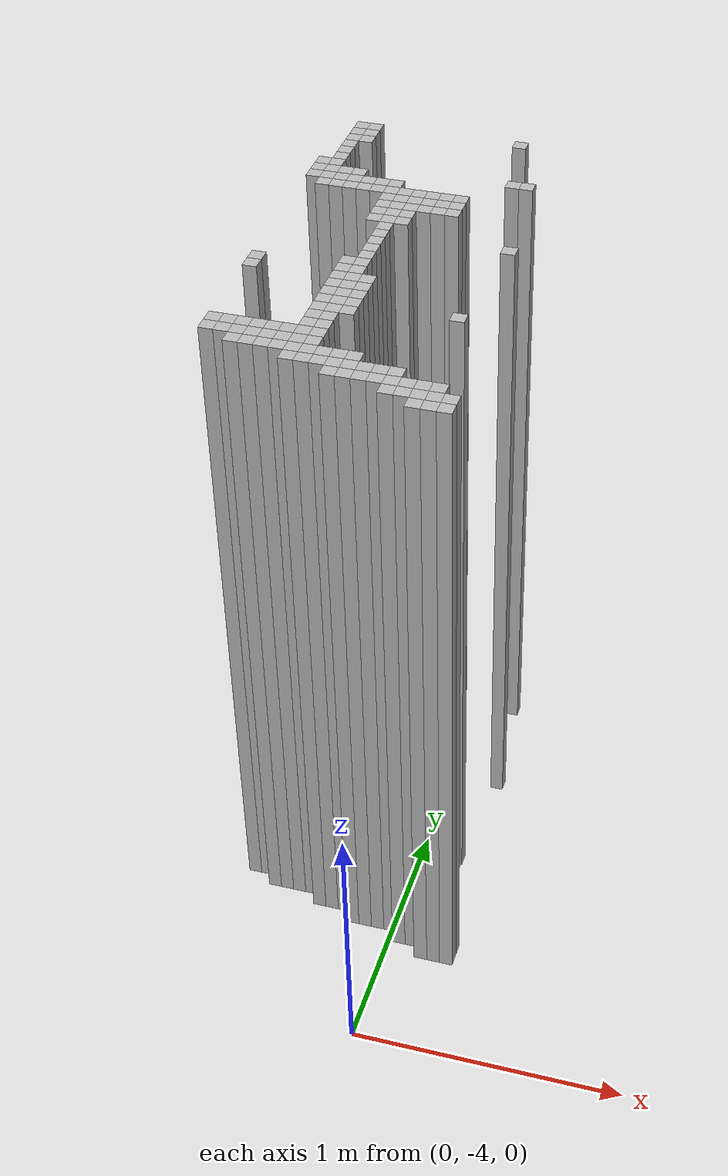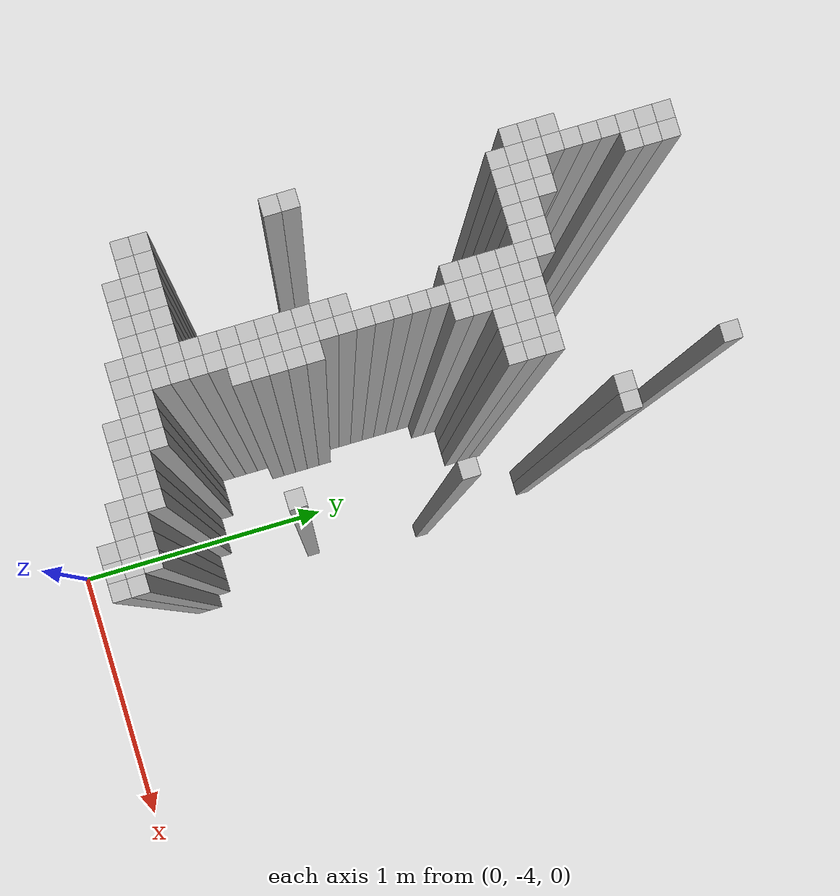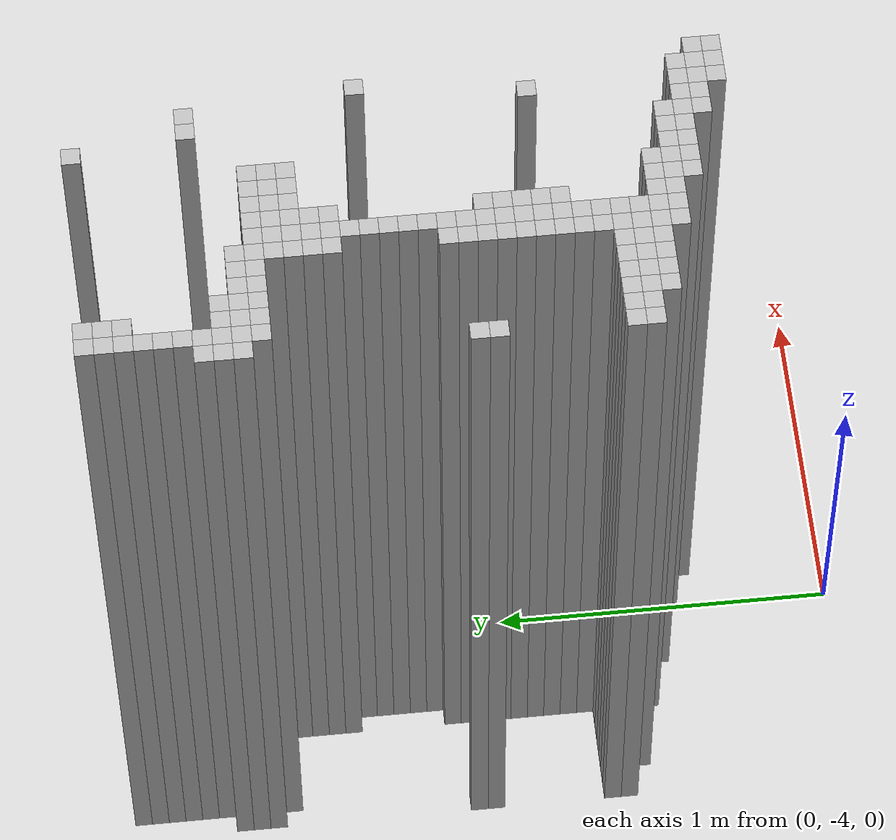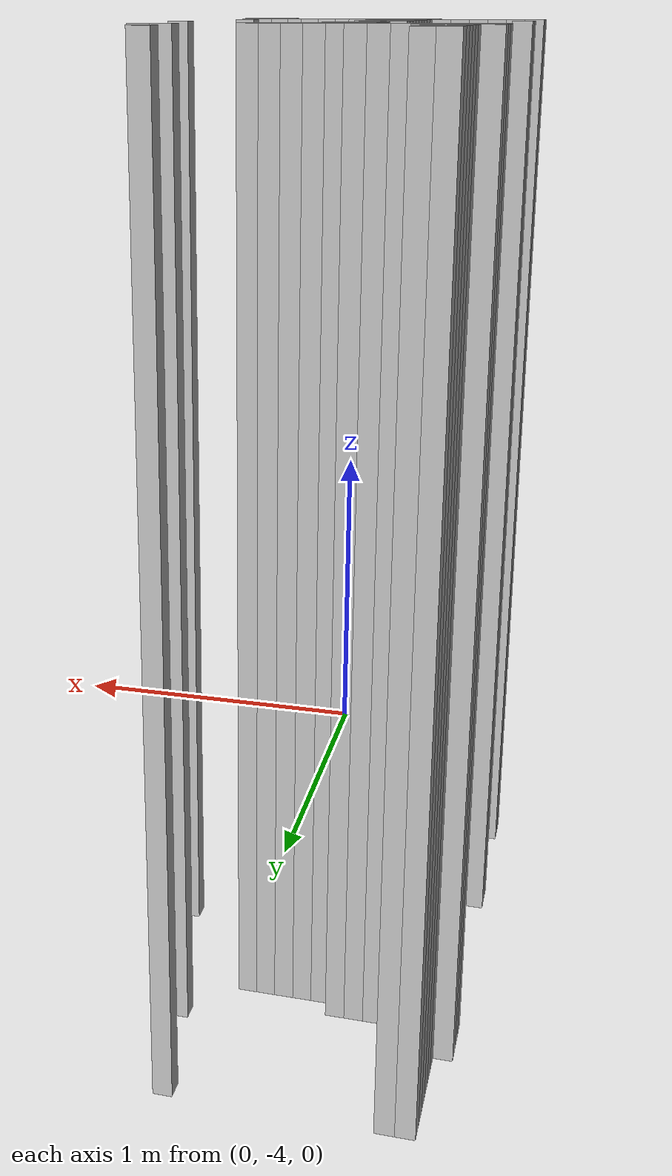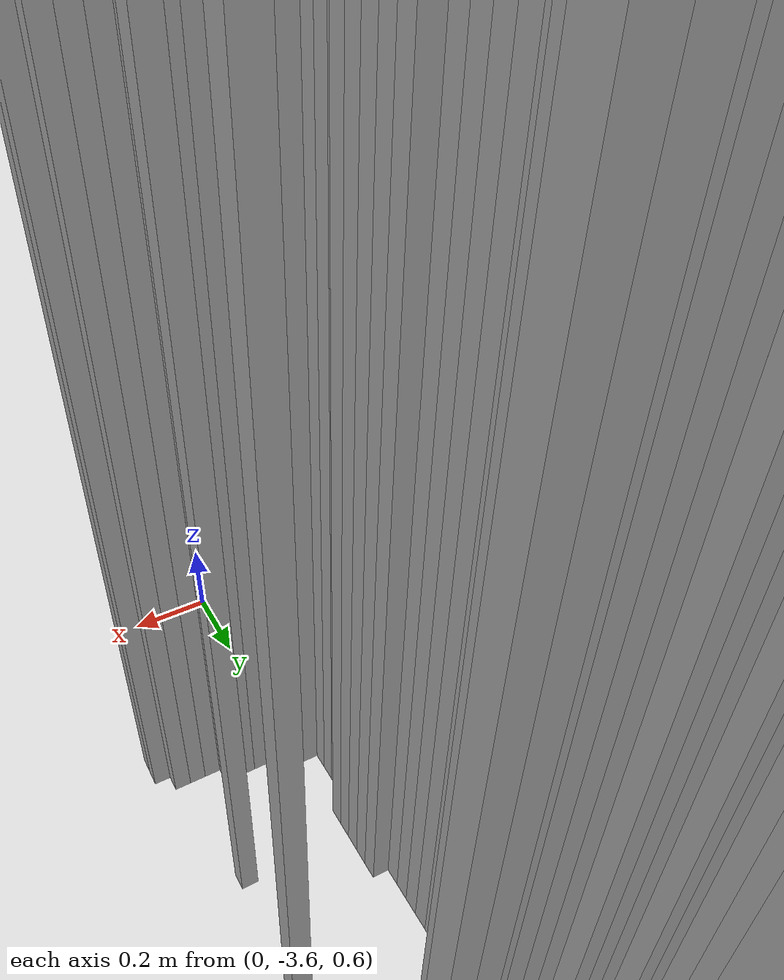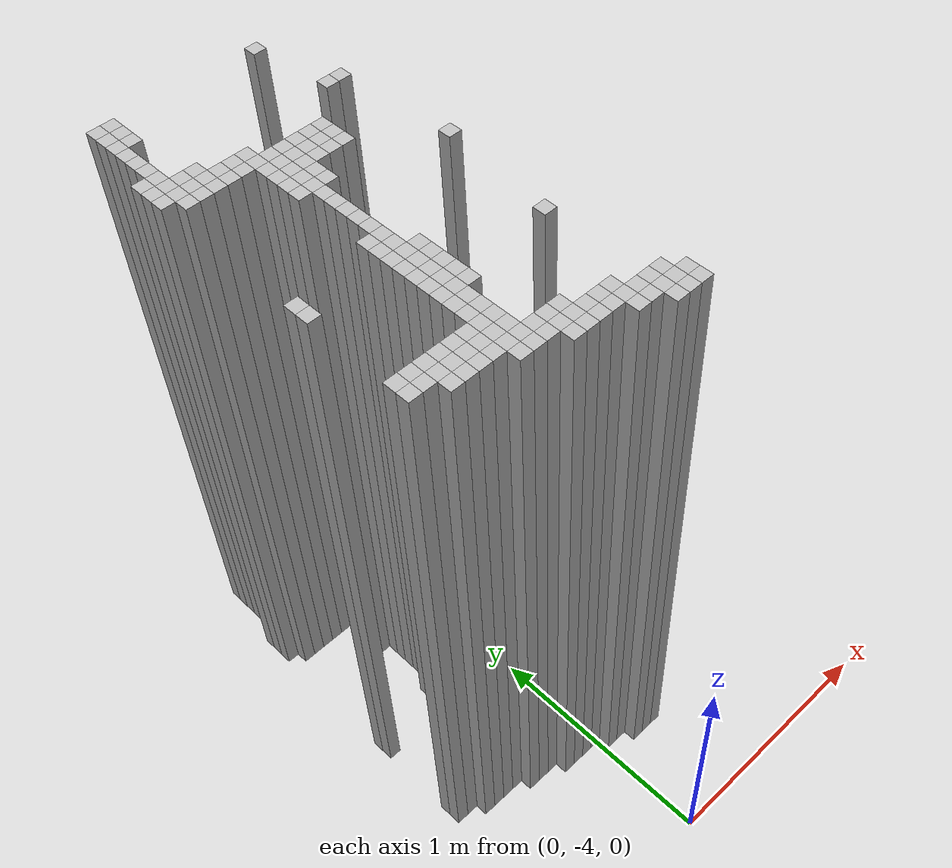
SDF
<sdf version="1.9">
 <world name="map_world">
  <model name="wall_212_191">
   <static>true</static>
   <pose>-0.561 -1.870 1.250 0 0 0</pose>
   <link name="link">
    <collision name="collision"><geometry><box><size>0.050 0.050 2.500</size></box></geometry></collision>
    <visual name="visual"><geometry><box><size>0.050 0.050 2.500</size></box></geometry></visual>
   </link>
  </model>
  <model name="wall_213_191">
   <static>true</static>
   <pose>-0.511 -1.870 1.250 0 0 0</pose>
   <link name="link">
    <collision name="collision"><geometry><box><size>0.050 0.050 2.500</size></box></geometry></collision>
    <visual name="visual"><geometry><box><size>0.050 0.050 2.500</size></box></geometry></visual>
   </link>
  </model>
  <model name="wall_224_191">
   <static>true</static>
   <pose>0.039 -1.870 1.250 0 0 0</pose>
   <link name="link">
    <collision name="collision"><geometry><box><size>0.050 0.050 2.500</size></box></geometry></collision>
    <visual name="visual"><geometry><box><size>0.050 0.050 2.500</size></box></geometry></visual>
   </link>
  </model>
  <model name="wall_212_192">
   <static>true</static>
   <pose>-0.561 -1.920 1.250 0 0 0</pose>
   <link name="link">
    <collision name="collision"><geometry><box><size>0.050 0.050 2.500</size></box></geometry></collision>
    <visual name="visual"><geometry><box><size>0.050 0.050 2.500</size></box></geometry></visual>
   </link>
  </model>
  <model name="wall_213_192">
   <static>true</static>
   <pose>-0.511 -1.920 1.250 0 0 0</pose>
   <link name="link">
    <collision name="collision"><geometry><box><size>0.050 0.050 2.500</size></box></geometry></collision>
    <visual name="visual"><geometry><box><size>0.050 0.050 2.500</size></box></geometry></visual>
   </link>
  </model>
  <model name="wall_212_193">
   <static>true</static>
   <pose>-0.561 -1.970 1.250 0 0 0</pose>
   <link name="link">
    <collision name="collision"><geometry><box><size>0.050 0.050 2.500</size></box></geometry></collision>
    <visual name="visual"><geometry><box><size>0.050 0.050 2.500</size></box></geometry></visual>
   </link>
  </model>
  <model name="wall_213_193">
   <static>true</static>
   <pose>-0.511 -1.970 1.250 0 0 0</pose>
   <link name="link">
    <collision name="collision"><geometry><box><size>0.050 0.050 2.500</size></box></geometry></collision>
    <visual name="visual"><geometry><box><size>0.050 0.050 2.500</size></box></geometry></visual>
   </link>
  </model>
  <model name="wall_212_194">
   <static>true</static>
   <pose>-0.561 -2.020 1.250 0 0 0</pose>
   <link name="link">
    <collision name="collision"><geometry><box><size>0.050 0.050 2.500</size></box></geometry></collision>
    <visual name="visual"><geometry><box><size>0.050 0.050 2.500</size></box></geometry></visual>
   </link>
  </model>
  <model name="wall_212_195">
   <static>true</static>
   <pose>-0.561 -2.070 1.250 0 0 0</pose>
   <link name="link">
    <collision name="collision"><geometry><box><size>0.050 0.050 2.500</size></box></geometry></collision>
    <visual name="visual"><geometry><box><size>0.050 0.050 2.500</size></box></geometry></visual>
   </link>
  </model>
  <model name="wall_212_196">
   <static>true</static>
   <pose>-0.561 -2.120 1.250 0 0 0</pose>
   <link name="link">
    <collision name="collision"><geometry><box><size>0.050 0.050 2.500</size></box></geometry></collision>
    <visual name="visual"><geometry><box><size>0.050 0.050 2.500</size></box></geometry></visual>
   </link>
  </model>
  <model name="wall_211_197">
   <static>true</static>
   <pose>-0.611 -2.170 1.250 0 0 0</pose>
   <link name="link">
    <collision name="collision"><geometry><box><size>0.050 0.050 2.500</size></box></geometry></collision>
    <visual name="visual"><geometry><box><size>0.050 0.050 2.500</size></box></geometry></visual>
   </link>
  </model>
  <model name="wall_212_197">
   <static>true</static>
   <pose>-0.561 -2.170 1.250 0 0 0</pose>
   <link name="link">
    <collision name="collision"><geometry><box><size>0.050 0.050 2.500</size></box></geometry></collision>
    <visual name="visual"><geometry><box><size>0.050 0.050 2.500</size></box></geometry></visual>
   </link>
  </model>
  <model name="wall_225_197">
   <static>true</static>
   <pose>0.089 -2.170 1.250 0 0 0</pose>
   <link name="link">
    <collision name="collision"><geometry><box><size>0.050 0.050 2.500</size></box></geometry></collision>
    <visual name="visual"><geometry><box><size>0.050 0.050 2.500</size></box></geometry></visual>
   </link>
  </model>
  <model name="wall_226_197">
   <static>true</static>
   <pose>0.139 -2.170 1.250 0 0 0</pose>
   <link name="link">
    <collision name="collision"><geometry><box><size>0.050 0.050 2.500</size></box></geometry></collision>
    <visual name="visual"><geometry><box><size>0.050 0.050 2.500</size></box></geometry></visual>
   </link>
  </model>
  <model name="wall_211_198">
   <static>true</static>
   <pose>-0.611 -2.220 1.250 0 0 0</pose>
   <link name="link">
    <collision name="collision"><geometry><box><size>0.050 0.050 2.500</size></box></geometry></collision>
    <visual name="visual"><geometry><box><size>0.050 0.050 2.500</size></box></geometry></visual>
   </link>
  </model>
  <model name="wall_212_198">
   <static>true</static>
   <pose>-0.561 -2.220 1.250 0 0 0</pose>
   <link name="link">
    <collision name="collision"><geometry><box><size>0.050 0.050 2.500</size></box></geometry></collision>
    <visual name="visual"><geometry><box><size>0.050 0.050 2.500</size></box></geometry></visual>
   </link>
  </model>
  <model name="wall_213_198">
   <static>true</static>
   <pose>-0.511 -2.220 1.250 0 0 0</pose>
   <link name="link">
    <collision name="collision"><geometry><box><size>0.050 0.050 2.500</size></box></geometry></collision>
    <visual name="visual"><geometry><box><size>0.050 0.050 2.500</size></box></geometry></visual>
   </link>
  </model>
  <model name="wall_214_198">
   <static>true</static>
   <pose>-0.461 -2.220 1.250 0 0 0</pose>
   <link name="link">
    <collision name="collision"><geometry><box><size>0.050 0.050 2.500</size></box></geometry></collision>
    <visual name="visual"><geometry><box><size>0.050 0.050 2.500</size></box></geometry></visual>
   </link>
  </model>
  <model name="wall_211_199">
   <static>true</static>
   <pose>-0.611 -2.270 1.250 0 0 0</pose>
   <link name="link">
    <collision name="collision"><geometry><box><size>0.050 0.050 2.500</size></box></geometry></collision>
    <visual name="visual"><geometry><box><size>0.050 0.050 2.500</size></box></geometry></visual>
   </link>
  </model>
  <model name="wall_212_199">
   <static>true</static>
   <pose>-0.561 -2.270 1.250 0 0 0</pose>
   <link name="link">
    <collision name="collision"><geometry><box><size>0.050 0.050 2.500</size></box></geometry></collision>
    <visual name="visual"><geometry><box><size>0.050 0.050 2.500</size></box></geometry></visual>
   </link>
  </model>
  <model name="wall_213_199">
   <static>true</static>
   <pose>-0.511 -2.270 1.250 0 0 0</pose>
   <link name="link">
    <collision name="collision"><geometry><box><size>0.050 0.050 2.500</size></box></geometry></collision>
    <visual name="visual"><geometry><box><size>0.050 0.050 2.500</size></box></geometry></visual>
   </link>
  </model>
  <model name="wall_214_199">
   <static>true</static>
   <pose>-0.461 -2.270 1.250 0 0 0</pose>
   <link name="link">
    <collision name="collision"><geometry><box><size>0.050 0.050 2.500</size></box></geometry></collision>
    <visual name="visual"><geometry><box><size>0.050 0.050 2.500</size></box></geometry></visual>
   </link>
  </model>
  <model name="wall_215_199">
   <static>true</static>
   <pose>-0.411 -2.270 1.250 0 0 0</pose>
   <link name="link">
    <collision name="collision"><geometry><box><size>0.050 0.050 2.500</size></box></geometry></collision>
    <visual name="visual"><geometry><box><size>0.050 0.050 2.500</size></box></geometry></visual>
   </link>
  </model>
  <model name="wall_216_199">
   <static>true</static>
   <pose>-0.361 -2.270 1.250 0 0 0</pose>
   <link name="link">
    <collision name="collision"><geometry><box><size>0.050 0.050 2.500</size></box></geometry></collision>
    <visual name="visual"><geometry><box><size>0.050 0.050 2.500</size></box></geometry></visual>
   </link>
  </model>
  <model name="wall_217_199">
   <static>true</static>
   <pose>-0.311 -2.270 1.250 0 0 0</pose>
   <link name="link">
    <collision name="collision"><geometry><box><size>0.050 0.050 2.500</size></box></geometry></collision>
    <visual name="visual"><geometry><box><size>0.050 0.050 2.500</size></box></geometry></visual>
   </link>
  </model>
  <model name="wall_212_200">
   <static>true</static>
   <pose>-0.561 -2.320 1.250 0 0 0</pose>
   <link name="link">
    <collision name="collision"><geometry><box><size>0.050 0.050 2.500</size></box></geometry></collision>
    <visual name="visual"><geometry><box><size>0.050 0.050 2.500</size></box></geometry></visual>
   </link>
  </model>
  <model name="wall_213_200">
   <static>true</static>
   <pose>-0.511 -2.320 1.250 0 0 0</pose>
   <link name="link">
    <collision name="collision"><geometry><box><size>0.050 0.050 2.500</size></box></geometry></collision>
    <visual name="visual"><geometry><box><size>0.050 0.050 2.500</size></box></geometry></visual>
   </link>
  </model>
  <model name="wall_214_200">
   <static>true</static>
   <pose>-0.461 -2.320 1.250 0 0 0</pose>
   <link name="link">
    <collision name="collision"><geometry><box><size>0.050 0.050 2.500</size></box></geometry></collision>
    <visual name="visual"><geometry><box><size>0.050 0.050 2.500</size></box></geometry></visual>
   </link>
  </model>
  <model name="wall_215_200">
   <static>true</static>
   <pose>-0.411 -2.320 1.250 0 0 0</pose>
   <link name="link">
    <collision name="collision"><geometry><box><size>0.050 0.050 2.500</size></box></geometry></collision>
    <visual name="visual"><geometry><box><size>0.050 0.050 2.500</size></box></geometry></visual>
   </link>
  </model>
  <model name="wall_216_200">
   <static>true</static>
   <pose>-0.361 -2.320 1.250 0 0 0</pose>
   <link name="link">
    <collision name="collision"><geometry><box><size>0.050 0.050 2.500</size></box></geometry></collision>
    <visual name="visual"><geometry><box><size>0.050 0.050 2.500</size></box></geometry></visual>
   </link>
  </model>
  <model name="wall_217_200">
   <static>true</static>
   <pose>-0.311 -2.320 1.250 0 0 0</pose>
   <link name="link">
    <collision name="collision"><geometry><box><size>0.050 0.050 2.500</size></box></geometry></collision>
    <visual name="visual"><geometry><box><size>0.050 0.050 2.500</size></box></geometry></visual>
   </link>
  </model>
  <model name="wall_218_200">
   <static>true</static>
   <pose>-0.261 -2.320 1.250 0 0 0</pose>
   <link name="link">
    <collision name="collision"><geometry><box><size>0.050 0.050 2.500</size></box></geometry></collision>
    <visual name="visual"><geometry><box><size>0.050 0.050 2.500</size></box></geometry></visual>
   </link>
  </model>
  <model name="wall_219_200">
   <static>true</static>
   <pose>-0.211 -2.320 1.250 0 0 0</pose>
   <link name="link">
    <collision name="collision"><geometry><box><size>0.050 0.050 2.500</size></box></geometry></collision>
    <visual name="visual"><geometry><box><size>0.050 0.050 2.500</size></box></geometry></visual>
   </link>
  </model>
  <model name="wall_220_200">
   <static>true</static>
   <pose>-0.161 -2.320 1.250 0 0 0</pose>
   <link name="link">
    <collision name="collision"><geometry><box><size>0.050 0.050 2.500</size></box></geometry></collision>
    <visual name="visual"><geometry><box><size>0.050 0.050 2.500</size></box></geometry></visual>
   </link>
  </model>
  <model name="wall_221_200">
   <static>true</static>
   <pose>-0.111 -2.320 1.250 0 0 0</pose>
   <link name="link">
    <collision name="collision"><geometry><box><size>0.050 0.050 2.500</size></box></geometry></collision>
    <visual name="visual"><geometry><box><size>0.050 0.050 2.500</size></box></geometry></visual>
   </link>
  </model>
  <model name="wall_222_200">
   <static>true</static>
   <pose>-0.061 -2.320 1.250 0 0 0</pose>
   <link name="link">
    <collision name="collision"><geometry><box><size>0.050 0.050 2.500</size></box></geometry></collision>
    <visual name="visual"><geometry><box><size>0.050 0.050 2.500</size></box></geometry></visual>
   </link>
  </model>
  <model name="wall_217_201">
   <static>true</static>
   <pose>-0.311 -2.370 1.250 0 0 0</pose>
   <link name="link">
    <collision name="collision"><geometry><box><size>0.050 0.050 2.500</size></box></geometry></collision>
    <visual name="visual"><geometry><box><size>0.050 0.050 2.500</size></box></geometry></visual>
   </link>
  </model>
  <model name="wall_218_201">
   <static>true</static>
   <pose>-0.261 -2.370 1.250 0 0 0</pose>
   <link name="link">
    <collision name="collision"><geometry><box><size>0.050 0.050 2.500</size></box></geometry></collision>
    <visual name="visual"><geometry><box><size>0.050 0.050 2.500</size></box></geometry></visual>
   </link>
  </model>
  <model name="wall_219_201">
   <static>true</static>
   <pose>-0.211 -2.370 1.250 0 0 0</pose>
   <link name="link">
    <collision name="collision"><geometry><box><size>0.050 0.050 2.500</size></box></geometry></collision>
    <visual name="visual"><geometry><box><size>0.050 0.050 2.500</size></box></geometry></visual>
   </link>
  </model>
  <model name="wall_220_201">
   <static>true</static>
   <pose>-0.161 -2.370 1.250 0 0 0</pose>
   <link name="link">
    <collision name="collision"><geometry><box><size>0.050 0.050 2.500</size></box></geometry></collision>
    <visual name="visual"><geometry><box><size>0.050 0.050 2.500</size></box></geometry></visual>
   </link>
  </model>
  <model name="wall_221_201">
   <static>true</static>
   <pose>-0.111 -2.370 1.250 0 0 0</pose>
   <link name="link">
    <collision name="collision"><geometry><box><size>0.050 0.050 2.500</size></box></geometry></collision>
    <visual name="visual"><geometry><box><size>0.050 0.050 2.500</size></box></geometry></visual>
   </link>
  </model>
  <model name="wall_222_201">
   <static>true</static>
   <pose>-0.061 -2.370 1.250 0 0 0</pose>
   <link name="link">
    <collision name="collision"><geometry><box><size>0.050 0.050 2.500</size></box></geometry></collision>
    <visual name="visual"><geometry><box><size>0.050 0.050 2.500</size></box></geometry></visual>
   </link>
  </model>
  <model name="wall_217_202">
   <static>true</static>
   <pose>-0.311 -2.420 1.250 0 0 0</pose>
   <link name="link">
    <collision name="collision"><geometry><box><size>0.050 0.050 2.500</size></box></geometry></collision>
    <visual name="visual"><geometry><box><size>0.050 0.050 2.500</size></box></geometry></visual>
   </link>
  </model>
  <model name="wall_218_202">
   <static>true</static>
   <pose>-0.261 -2.420 1.250 0 0 0</pose>
   <link name="link">
    <collision name="collision"><geometry><box><size>0.050 0.050 2.500</size></box></geometry></collision>
    <visual name="visual"><geometry><box><size>0.050 0.050 2.500</size></box></geometry></visual>
   </link>
  </model>
  <model name="wall_219_202">
   <static>true</static>
   <pose>-0.211 -2.420 1.250 0 0 0</pose>
   <link name="link">
    <collision name="collision"><geometry><box><size>0.050 0.050 2.500</size></box></geometry></collision>
    <visual name="visual"><geometry><box><size>0.050 0.050 2.500</size></box></geometry></visual>
   </link>
  </model>
  <model name="wall_220_202">
   <static>true</static>
   <pose>-0.161 -2.420 1.250 0 0 0</pose>
   <link name="link">
    <collision name="collision"><geometry><box><size>0.050 0.050 2.500</size></box></geometry></collision>
    <visual name="visual"><geometry><box><size>0.050 0.050 2.500</size></box></geometry></visual>
   </link>
  </model>
  <model name="wall_221_202">
   <static>true</static>
   <pose>-0.111 -2.420 1.250 0 0 0</pose>
   <link name="link">
    <collision name="collision"><geometry><box><size>0.050 0.050 2.500</size></box></geometry></collision>
    <visual name="visual"><geometry><box><size>0.050 0.050 2.500</size></box></geometry></visual>
   </link>
  </model>
  <model name="wall_222_202">
   <static>true</static>
   <pose>-0.061 -2.420 1.250 0 0 0</pose>
   <link name="link">
    <collision name="collision"><geometry><box><size>0.050 0.050 2.500</size></box></geometry></collision>
    <visual name="visual"><geometry><box><size>0.050 0.050 2.500</size></box></geometry></visual>
   </link>
  </model>
  <model name="wall_217_203">
   <static>true</static>
   <pose>-0.311 -2.470 1.250 0 0 0</pose>
   <link name="link">
    <collision name="collision"><geometry><box><size>0.050 0.050 2.500</size></box></geometry></collision>
    <visual name="visual"><geometry><box><size>0.050 0.050 2.500</size></box></geometry></visual>
   </link>
  </model>
  <model name="wall_218_203">
   <static>true</static>
   <pose>-0.261 -2.470 1.250 0 0 0</pose>
   <link name="link">
    <collision name="collision"><geometry><box><size>0.050 0.050 2.500</size></box></geometry></collision>
    <visual name="visual"><geometry><box><size>0.050 0.050 2.500</size></box></geometry></visual>
   </link>
  </model>
  <model name="wall_219_203">
   <static>true</static>
   <pose>-0.211 -2.470 1.250 0 0 0</pose>
   <link name="link">
    <collision name="collision"><geometry><box><size>0.050 0.050 2.500</size></box></geometry></collision>
    <visual name="visual"><geometry><box><size>0.050 0.050 2.500</size></box></geometry></visual>
   </link>
  </model>
  <model name="wall_217_204">
   <static>true</static>
   <pose>-0.311 -2.520 1.250 0 0 0</pose>
   <link name="link">
    <collision name="collision"><geometry><box><size>0.050 0.050 2.500</size></box></geometry></collision>
    <visual name="visual"><geometry><box><size>0.050 0.050 2.500</size></box></geometry></visual>
   </link>
  </model>
  <model name="wall_218_204">
   <static>true</static>
   <pose>-0.261 -2.520 1.250 0 0 0</pose>
   <link name="link">
    <collision name="collision"><geometry><box><size>0.050 0.050 2.500</size></box></geometry></collision>
    <visual name="visual"><geometry><box><size>0.050 0.050 2.500</size></box></geometry></visual>
   </link>
  </model>
  <model name="wall_219_204">
   <static>true</static>
   <pose>-0.211 -2.520 1.250 0 0 0</pose>
   <link name="link">
    <collision name="collision"><geometry><box><size>0.050 0.050 2.500</size></box></geometry></collision>
    <visual name="visual"><geometry><box><size>0.050 0.050 2.500</size></box></geometry></visual>
   </link>
  </model>
  <model name="wall_218_205">
   <static>true</static>
   <pose>-0.261 -2.570 1.250 0 0 0</pose>
   <link name="link">
    <collision name="collision"><geometry><box><size>0.050 0.050 2.500</size></box></geometry></collision>
    <visual name="visual"><geometry><box><size>0.050 0.050 2.500</size></box></geometry></visual>
   </link>
  </model>
  <model name="wall_218_206">
   <static>true</static>
   <pose>-0.261 -2.620 1.250 0 0 0</pose>
   <link name="link">
    <collision name="collision"><geometry><box><size>0.050 0.050 2.500</size></box></geometry></collision>
    <visual name="visual"><geometry><box><size>0.050 0.050 2.500</size></box></geometry></visual>
   </link>
  </model>
  <model name="wall_227_206">
   <static>true</static>
   <pose>0.189 -2.620 1.250 0 0 0</pose>
   <link name="link">
    <collision name="collision"><geometry><box><size>0.050 0.050 2.500</size></box></geometry></collision>
    <visual name="visual"><geometry><box><size>0.050 0.050 2.500</size></box></geometry></visual>
   </link>
  </model>
  <model name="wall_218_207">
   <static>true</static>
   <pose>-0.261 -2.670 1.250 0 0 0</pose>
   <link name="link">
    <collision name="collision"><geometry><box><size>0.050 0.050 2.500</size></box></geometry></collision>
    <visual name="visual"><geometry><box><size>0.050 0.050 2.500</size></box></geometry></visual>
   </link>
  </model>
  <model name="wall_218_208">
   <static>true</static>
   <pose>-0.261 -2.720 1.250 0 0 0</pose>
   <link name="link">
    <collision name="collision"><geometry><box><size>0.050 0.050 2.500</size></box></geometry></collision>
    <visual name="visual"><geometry><box><size>0.050 0.050 2.500</size></box></geometry></visual>
   </link>
  </model>
  <model name="wall_218_209">
   <static>true</static>
   <pose>-0.261 -2.770 1.250 0 0 0</pose>
   <link name="link">
    <collision name="collision"><geometry><box><size>0.050 0.050 2.500</size></box></geometry></collision>
    <visual name="visual"><geometry><box><size>0.050 0.050 2.500</size></box></geometry></visual>
   </link>
  </model>
  <model name="wall_217_210">
   <static>true</static>
   <pose>-0.311 -2.820 1.250 0 0 0</pose>
   <link name="link">
    <collision name="collision"><geometry><box><size>0.050 0.050 2.500</size></box></geometry></collision>
    <visual name="visual"><geometry><box><size>0.050 0.050 2.500</size></box></geometry></visual>
   </link>
  </model>
  <model name="wall_218_210">
   <static>true</static>
   <pose>-0.261 -2.820 1.250 0 0 0</pose>
   <link name="link">
    <collision name="collision"><geometry><box><size>0.050 0.050 2.500</size></box></geometry></collision>
    <visual name="visual"><geometry><box><size>0.050 0.050 2.500</size></box></geometry></visual>
   </link>
  </model>
  <model name="wall_211_211">
   <static>true</static>
   <pose>-0.611 -2.870 1.250 0 0 0</pose>
   <link name="link">
    <collision name="collision"><geometry><box><size>0.050 0.050 2.500</size></box></geometry></collision>
    <visual name="visual"><geometry><box><size>0.050 0.050 2.500</size></box></geometry></visual>
   </link>
  </model>
  <model name="wall_217_211">
   <static>true</static>
   <pose>-0.311 -2.870 1.250 0 0 0</pose>
   <link name="link">
    <collision name="collision"><geometry><box><size>0.050 0.050 2.500</size></box></geometry></collision>
    <visual name="visual"><geometry><box><size>0.050 0.050 2.500</size></box></geometry></visual>
   </link>
  </model>
  <model name="wall_218_211">
   <static>true</static>
   <pose>-0.261 -2.870 1.250 0 0 0</pose>
   <link name="link">
    <collision name="collision"><geometry><box><size>0.050 0.050 2.500</size></box></geometry></collision>
    <visual name="visual"><geometry><box><size>0.050 0.050 2.500</size></box></geometry></visual>
   </link>
  </model>
  <model name="wall_211_212">
   <static>true</static>
   <pose>-0.611 -2.920 1.250 0 0 0</pose>
   <link name="link">
    <collision name="collision"><geometry><box><size>0.050 0.050 2.500</size></box></geometry></collision>
    <visual name="visual"><geometry><box><size>0.050 0.050 2.500</size></box></geometry></visual>
   </link>
  </model>
  <model name="wall_217_212">
   <static>true</static>
   <pose>-0.311 -2.920 1.250 0 0 0</pose>
   <link name="link">
    <collision name="collision"><geometry><box><size>0.050 0.050 2.500</size></box></geometry></collision>
    <visual name="visual"><geometry><box><size>0.050 0.050 2.500</size></box></geometry></visual>
   </link>
  </model>
  <model name="wall_218_212">
   <static>true</static>
   <pose>-0.261 -2.920 1.250 0 0 0</pose>
   <link name="link">
    <collision name="collision"><geometry><box><size>0.050 0.050 2.500</size></box></geometry></collision>
    <visual name="visual"><geometry><box><size>0.050 0.050 2.500</size></box></geometry></visual>
   </link>
  </model>
  <model name="wall_219_212">
   <static>true</static>
   <pose>-0.211 -2.920 1.250 0 0 0</pose>
   <link name="link">
    <collision name="collision"><geometry><box><size>0.050 0.050 2.500</size></box></geometry></collision>
    <visual name="visual"><geometry><box><size>0.050 0.050 2.500</size></box></geometry></visual>
   </link>
  </model>
  <model name="wall_217_213">
   <static>true</static>
   <pose>-0.311 -2.970 1.250 0 0 0</pose>
   <link name="link">
    <collision name="collision"><geometry><box><size>0.050 0.050 2.500</size></box></geometry></collision>
    <visual name="visual"><geometry><box><size>0.050 0.050 2.500</size></box></geometry></visual>
   </link>
  </model>
  <model name="wall_218_213">
   <static>true</static>
   <pose>-0.261 -2.970 1.250 0 0 0</pose>
   <link name="link">
    <collision name="collision"><geometry><box><size>0.050 0.050 2.500</size></box></geometry></collision>
    <visual name="visual"><geometry><box><size>0.050 0.050 2.500</size></box></geometry></visual>
   </link>
  </model>
  <model name="wall_219_213">
   <static>true</static>
   <pose>-0.211 -2.970 1.250 0 0 0</pose>
   <link name="link">
    <collision name="collision"><geometry><box><size>0.050 0.050 2.500</size></box></geometry></collision>
    <visual name="visual"><geometry><box><size>0.050 0.050 2.500</size></box></geometry></visual>
   </link>
  </model>
  <model name="wall_217_214">
   <static>true</static>
   <pose>-0.311 -3.020 1.250 0 0 0</pose>
   <link name="link">
    <collision name="collision"><geometry><box><size>0.050 0.050 2.500</size></box></geometry></collision>
    <visual name="visual"><geometry><box><size>0.050 0.050 2.500</size></box></geometry></visual>
   </link>
  </model>
  <model name="wall_218_214">
   <static>true</static>
   <pose>-0.261 -3.020 1.250 0 0 0</pose>
   <link name="link">
    <collision name="collision"><geometry><box><size>0.050 0.050 2.500</size></box></geometry></collision>
    <visual name="visual"><geometry><box><size>0.050 0.050 2.500</size></box></geometry></visual>
   </link>
  </model>
  <model name="wall_219_214">
   <static>true</static>
   <pose>-0.211 -3.020 1.250 0 0 0</pose>
   <link name="link">
    <collision name="collision"><geometry><box><size>0.050 0.050 2.500</size></box></geometry></collision>
    <visual name="visual"><geometry><box><size>0.050 0.050 2.500</size></box></geometry></visual>
   </link>
  </model>
  <model name="wall_217_215">
   <static>true</static>
   <pose>-0.311 -3.070 1.250 0 0 0</pose>
   <link name="link">
    <collision name="collision"><geometry><box><size>0.050 0.050 2.500</size></box></geometry></collision>
    <visual name="visual"><geometry><box><size>0.050 0.050 2.500</size></box></geometry></visual>
   </link>
  </model>
  <model name="wall_218_215">
   <static>true</static>
   <pose>-0.261 -3.070 1.250 0 0 0</pose>
   <link name="link">
    <collision name="collision"><geometry><box><size>0.050 0.050 2.500</size></box></geometry></collision>
    <visual name="visual"><geometry><box><size>0.050 0.050 2.500</size></box></geometry></visual>
   </link>
  </model>
  <model name="wall_219_215">
   <static>true</static>
   <pose>-0.211 -3.070 1.250 0 0 0</pose>
   <link name="link">
    <collision name="collision"><geometry><box><size>0.050 0.050 2.500</size></box></geometry></collision>
    <visual name="visual"><geometry><box><size>0.050 0.050 2.500</size></box></geometry></visual>
   </link>
  </model>
  <model name="wall_226_215">
   <static>true</static>
   <pose>0.139 -3.070 1.250 0 0 0</pose>
   <link name="link">
    <collision name="collision"><geometry><box><size>0.050 0.050 2.500</size></box></geometry></collision>
    <visual name="visual"><geometry><box><size>0.050 0.050 2.500</size></box></geometry></visual>
   </link>
  </model>
  <model name="wall_217_216">
   <static>true</static>
   <pose>-0.311 -3.120 1.250 0 0 0</pose>
   <link name="link">
    <collision name="collision"><geometry><box><size>0.050 0.050 2.500</size></box></geometry></collision>
    <visual name="visual"><geometry><box><size>0.050 0.050 2.500</size></box></geometry></visual>
   </link>
  </model>
  <model name="wall_218_216">
   <static>true</static>
   <pose>-0.261 -3.120 1.250 0 0 0</pose>
   <link name="link">
    <collision name="collision"><geometry><box><size>0.050 0.050 2.500</size></box></geometry></collision>
    <visual name="visual"><geometry><box><size>0.050 0.050 2.500</size></box></geometry></visual>
   </link>
  </model>
  <model name="wall_219_216">
   <static>true</static>
   <pose>-0.211 -3.120 1.250 0 0 0</pose>
   <link name="link">
    <collision name="collision"><geometry><box><size>0.050 0.050 2.500</size></box></geometry></collision>
    <visual name="visual"><geometry><box><size>0.050 0.050 2.500</size></box></geometry></visual>
   </link>
  </model>
  <model name="wall_217_217">
   <static>true</static>
   <pose>-0.311 -3.170 1.250 0 0 0</pose>
   <link name="link">
    <collision name="collision"><geometry><box><size>0.050 0.050 2.500</size></box></geometry></collision>
    <visual name="visual"><geometry><box><size>0.050 0.050 2.500</size></box></geometry></visual>
   </link>
  </model>
  <model name="wall_218_217">
   <static>true</static>
   <pose>-0.261 -3.170 1.250 0 0 0</pose>
   <link name="link">
    <collision name="collision"><geometry><box><size>0.050 0.050 2.500</size></box></geometry></collision>
    <visual name="visual"><geometry><box><size>0.050 0.050 2.500</size></box></geometry></visual>
   </link>
  </model>
  <model name="wall_217_218">
   <static>true</static>
   <pose>-0.311 -3.220 1.250 0 0 0</pose>
   <link name="link">
    <collision name="collision"><geometry><box><size>0.050 0.050 2.500</size></box></geometry></collision>
    <visual name="visual"><geometry><box><size>0.050 0.050 2.500</size></box></geometry></visual>
   </link>
  </model>
  <model name="wall_218_218">
   <static>true</static>
   <pose>-0.261 -3.220 1.250 0 0 0</pose>
   <link name="link">
    <collision name="collision"><geometry><box><size>0.050 0.050 2.500</size></box></geometry></collision>
    <visual name="visual"><geometry><box><size>0.050 0.050 2.500</size></box></geometry></visual>
   </link>
  </model>
  <model name="wall_211_219">
   <static>true</static>
   <pose>-0.611 -3.270 1.250 0 0 0</pose>
   <link name="link">
    <collision name="collision"><geometry><box><size>0.050 0.050 2.500</size></box></geometry></collision>
    <visual name="visual"><geometry><box><size>0.050 0.050 2.500</size></box></geometry></visual>
   </link>
  </model>
  <model name="wall_212_219">
   <static>true</static>
   <pose>-0.561 -3.270 1.250 0 0 0</pose>
   <link name="link">
    <collision name="collision"><geometry><box><size>0.050 0.050 2.500</size></box></geometry></collision>
    <visual name="visual"><geometry><box><size>0.050 0.050 2.500</size></box></geometry></visual>
   </link>
  </model>
  <model name="wall_213_219">
   <static>true</static>
   <pose>-0.511 -3.270 1.250 0 0 0</pose>
   <link name="link">
    <collision name="collision"><geometry><box><size>0.050 0.050 2.500</size></box></geometry></collision>
    <visual name="visual"><geometry><box><size>0.050 0.050 2.500</size></box></geometry></visual>
   </link>
  </model>
  <model name="wall_214_219">
   <static>true</static>
   <pose>-0.461 -3.270 1.250 0 0 0</pose>
   <link name="link">
    <collision name="collision"><geometry><box><size>0.050 0.050 2.500</size></box></geometry></collision>
    <visual name="visual"><geometry><box><size>0.050 0.050 2.500</size></box></geometry></visual>
   </link>
  </model>
  <model name="wall_215_219">
   <static>true</static>
   <pose>-0.411 -3.270 1.250 0 0 0</pose>
   <link name="link">
    <collision name="collision"><geometry><box><size>0.050 0.050 2.500</size></box></geometry></collision>
    <visual name="visual"><geometry><box><size>0.050 0.050 2.500</size></box></geometry></visual>
   </link>
  </model>
  <model name="wall_216_219">
   <static>true</static>
   <pose>-0.361 -3.270 1.250 0 0 0</pose>
   <link name="link">
    <collision name="collision"><geometry><box><size>0.050 0.050 2.500</size></box></geometry></collision>
    <visual name="visual"><geometry><box><size>0.050 0.050 2.500</size></box></geometry></visual>
   </link>
  </model>
  <model name="wall_217_219">
   <static>true</static>
   <pose>-0.311 -3.270 1.250 0 0 0</pose>
   <link name="link">
    <collision name="collision"><geometry><box><size>0.050 0.050 2.500</size></box></geometry></collision>
    <visual name="visual"><geometry><box><size>0.050 0.050 2.500</size></box></geometry></visual>
   </link>
  </model>
  <model name="wall_218_219">
   <static>true</static>
   <pose>-0.261 -3.270 1.250 0 0 0</pose>
   <link name="link">
    <collision name="collision"><geometry><box><size>0.050 0.050 2.500</size></box></geometry></collision>
    <visual name="visual"><geometry><box><size>0.050 0.050 2.500</size></box></geometry></visual>
   </link>
  </model>
  <model name="wall_211_220">
   <static>true</static>
   <pose>-0.611 -3.320 1.250 0 0 0</pose>
   <link name="link">
    <collision name="collision"><geometry><box><size>0.050 0.050 2.500</size></box></geometry></collision>
    <visual name="visual"><geometry><box><size>0.050 0.050 2.500</size></box></geometry></visual>
   </link>
  </model>
  <model name="wall_212_220">
   <static>true</static>
   <pose>-0.561 -3.320 1.250 0 0 0</pose>
   <link name="link">
    <collision name="collision"><geometry><box><size>0.050 0.050 2.500</size></box></geometry></collision>
    <visual name="visual"><geometry><box><size>0.050 0.050 2.500</size></box></geometry></visual>
   </link>
  </model>
  <model name="wall_213_220">
   <static>true</static>
   <pose>-0.511 -3.320 1.250 0 0 0</pose>
   <link name="link">
    <collision name="collision"><geometry><box><size>0.050 0.050 2.500</size></box></geometry></collision>
    <visual name="visual"><geometry><box><size>0.050 0.050 2.500</size></box></geometry></visual>
   </link>
  </model>
  <model name="wall_214_220">
   <static>true</static>
   <pose>-0.461 -3.320 1.250 0 0 0</pose>
   <link name="link">
    <collision name="collision"><geometry><box><size>0.050 0.050 2.500</size></box></geometry></collision>
    <visual name="visual"><geometry><box><size>0.050 0.050 2.500</size></box></geometry></visual>
   </link>
  </model>
  <model name="wall_215_220">
   <static>true</static>
   <pose>-0.411 -3.320 1.250 0 0 0</pose>
   <link name="link">
    <collision name="collision"><geometry><box><size>0.050 0.050 2.500</size></box></geometry></collision>
    <visual name="visual"><geometry><box><size>0.050 0.050 2.500</size></box></geometry></visual>
   </link>
  </model>
  <model name="wall_216_220">
   <static>true</static>
   <pose>-0.361 -3.320 1.250 0 0 0</pose>
   <link name="link">
    <collision name="collision"><geometry><box><size>0.050 0.050 2.500</size></box></geometry></collision>
    <visual name="visual"><geometry><box><size>0.050 0.050 2.500</size></box></geometry></visual>
   </link>
  </model>
  <model name="wall_217_220">
   <static>true</static>
   <pose>-0.311 -3.320 1.250 0 0 0</pose>
   <link name="link">
    <collision name="collision"><geometry><box><size>0.050 0.050 2.500</size></box></geometry></collision>
    <visual name="visual"><geometry><box><size>0.050 0.050 2.500</size></box></geometry></visual>
   </link>
  </model>
  <model name="wall_218_220">
   <static>true</static>
   <pose>-0.261 -3.320 1.250 0 0 0</pose>
   <link name="link">
    <collision name="collision"><geometry><box><size>0.050 0.050 2.500</size></box></geometry></collision>
    <visual name="visual"><geometry><box><size>0.050 0.050 2.500</size></box></geometry></visual>
   </link>
  </model>
  <model name="wall_213_221">
   <static>true</static>
   <pose>-0.511 -3.370 1.250 0 0 0</pose>
   <link name="link">
    <collision name="collision"><geometry><box><size>0.050 0.050 2.500</size></box></geometry></collision>
    <visual name="visual"><geometry><box><size>0.050 0.050 2.500</size></box></geometry></visual>
   </link>
  </model>
  <model name="wall_214_221">
   <static>true</static>
   <pose>-0.461 -3.370 1.250 0 0 0</pose>
   <link name="link">
    <collision name="collision"><geometry><box><size>0.050 0.050 2.500</size></box></geometry></collision>
    <visual name="visual"><geometry><box><size>0.050 0.050 2.500</size></box></geometry></visual>
   </link>
  </model>
  <model name="wall_215_221">
   <static>true</static>
   <pose>-0.411 -3.370 1.250 0 0 0</pose>
   <link name="link">
    <collision name="collision"><geometry><box><size>0.050 0.050 2.500</size></box></geometry></collision>
    <visual name="visual"><geometry><box><size>0.050 0.050 2.500</size></box></geometry></visual>
   </link>
  </model>
  <model name="wall_216_221">
   <static>true</static>
   <pose>-0.361 -3.370 1.250 0 0 0</pose>
   <link name="link">
    <collision name="collision"><geometry><box><size>0.050 0.050 2.500</size></box></geometry></collision>
    <visual name="visual"><geometry><box><size>0.050 0.050 2.500</size></box></geometry></visual>
   </link>
  </model>
  <model name="wall_217_221">
   <static>true</static>
   <pose>-0.311 -3.370 1.250 0 0 0</pose>
   <link name="link">
    <collision name="collision"><geometry><box><size>0.050 0.050 2.500</size></box></geometry></collision>
    <visual name="visual"><geometry><box><size>0.050 0.050 2.500</size></box></geometry></visual>
   </link>
  </model>
  <model name="wall_218_221">
   <static>true</static>
   <pose>-0.261 -3.370 1.250 0 0 0</pose>
   <link name="link">
    <collision name="collision"><geometry><box><size>0.050 0.050 2.500</size></box></geometry></collision>
    <visual name="visual"><geometry><box><size>0.050 0.050 2.500</size></box></geometry></visual>
   </link>
  </model>
  <model name="wall_219_221">
   <static>true</static>
   <pose>-0.211 -3.370 1.250 0 0 0</pose>
   <link name="link">
    <collision name="collision"><geometry><box><size>0.050 0.050 2.500</size></box></geometry></collision>
    <visual name="visual"><geometry><box><size>0.050 0.050 2.500</size></box></geometry></visual>
   </link>
  </model>
  <model name="wall_220_221">
   <static>true</static>
   <pose>-0.161 -3.370 1.250 0 0 0</pose>
   <link name="link">
    <collision name="collision"><geometry><box><size>0.050 0.050 2.500</size></box></geometry></collision>
    <visual name="visual"><geometry><box><size>0.050 0.050 2.500</size></box></geometry></visual>
   </link>
  </model>
  <model name="wall_221_221">
   <static>true</static>
   <pose>-0.111 -3.370 1.250 0 0 0</pose>
   <link name="link">
    <collision name="collision"><geometry><box><size>0.050 0.050 2.500</size></box></geometry></collision>
    <visual name="visual"><geometry><box><size>0.050 0.050 2.500</size></box></geometry></visual>
   </link>
  </model>
  <model name="wall_217_222">
   <static>true</static>
   <pose>-0.311 -3.420 1.250 0 0 0</pose>
   <link name="link">
    <collision name="collision"><geometry><box><size>0.050 0.050 2.500</size></box></geometry></collision>
    <visual name="visual"><geometry><box><size>0.050 0.050 2.500</size></box></geometry></visual>
   </link>
  </model>
  <model name="wall_218_222">
   <static>true</static>
   <pose>-0.261 -3.420 1.250 0 0 0</pose>
   <link name="link">
    <collision name="collision"><geometry><box><size>0.050 0.050 2.500</size></box></geometry></collision>
    <visual name="visual"><geometry><box><size>0.050 0.050 2.500</size></box></geometry></visual>
   </link>
  </model>
  <model name="wall_219_222">
   <static>true</static>
   <pose>-0.211 -3.420 1.250 0 0 0</pose>
   <link name="link">
    <collision name="collision"><geometry><box><size>0.050 0.050 2.500</size></box></geometry></collision>
    <visual name="visual"><geometry><box><size>0.050 0.050 2.500</size></box></geometry></visual>
   </link>
  </model>
  <model name="wall_220_222">
   <static>true</static>
   <pose>-0.161 -3.420 1.250 0 0 0</pose>
   <link name="link">
    <collision name="collision"><geometry><box><size>0.050 0.050 2.500</size></box></geometry></collision>
    <visual name="visual"><geometry><box><size>0.050 0.050 2.500</size></box></geometry></visual>
   </link>
  </model>
  <model name="wall_221_222">
   <static>true</static>
   <pose>-0.111 -3.420 1.250 0 0 0</pose>
   <link name="link">
    <collision name="collision"><geometry><box><size>0.050 0.050 2.500</size></box></geometry></collision>
    <visual name="visual"><geometry><box><size>0.050 0.050 2.500</size></box></geometry></visual>
   </link>
  </model>
  <model name="wall_222_222">
   <static>true</static>
   <pose>-0.061 -3.420 1.250 0 0 0</pose>
   <link name="link">
    <collision name="collision"><geometry><box><size>0.050 0.050 2.500</size></box></geometry></collision>
    <visual name="visual"><geometry><box><size>0.050 0.050 2.500</size></box></geometry></visual>
   </link>
  </model>
  <model name="wall_223_222">
   <static>true</static>
   <pose>-0.011 -3.420 1.250 0 0 0</pose>
   <link name="link">
    <collision name="collision"><geometry><box><size>0.050 0.050 2.500</size></box></geometry></collision>
    <visual name="visual"><geometry><box><size>0.050 0.050 2.500</size></box></geometry></visual>
   </link>
  </model>
  <model name="wall_224_222">
   <static>true</static>
   <pose>0.039 -3.420 1.250 0 0 0</pose>
   <link name="link">
    <collision name="collision"><geometry><box><size>0.050 0.050 2.500</size></box></geometry></collision>
    <visual name="visual"><geometry><box><size>0.050 0.050 2.500</size></box></geometry></visual>
   </link>
  </model>
  <model name="wall_220_223">
   <static>true</static>
   <pose>-0.161 -3.470 1.250 0 0 0</pose>
   <link name="link">
    <collision name="collision"><geometry><box><size>0.050 0.050 2.500</size></box></geometry></collision>
    <visual name="visual"><geometry><box><size>0.050 0.050 2.500</size></box></geometry></visual>
   </link>
  </model>
  <model name="wall_221_223">
   <static>true</static>
   <pose>-0.111 -3.470 1.250 0 0 0</pose>
   <link name="link">
    <collision name="collision"><geometry><box><size>0.050 0.050 2.500</size></box></geometry></collision>
    <visual name="visual"><geometry><box><size>0.050 0.050 2.500</size></box></geometry></visual>
   </link>
  </model>
  <model name="wall_222_223">
   <static>true</static>
   <pose>-0.061 -3.470 1.250 0 0 0</pose>
   <link name="link">
    <collision name="collision"><geometry><box><size>0.050 0.050 2.500</size></box></geometry></collision>
    <visual name="visual"><geometry><box><size>0.050 0.050 2.500</size></box></geometry></visual>
   </link>
  </model>
  <model name="wall_223_223">
   <static>true</static>
   <pose>-0.011 -3.470 1.250 0 0 0</pose>
   <link name="link">
    <collision name="collision"><geometry><box><size>0.050 0.050 2.500</size></box></geometry></collision>
    <visual name="visual"><geometry><box><size>0.050 0.050 2.500</size></box></geometry></visual>
   </link>
  </model>
  <model name="wall_224_223">
   <static>true</static>
   <pose>0.039 -3.470 1.250 0 0 0</pose>
   <link name="link">
    <collision name="collision"><geometry><box><size>0.050 0.050 2.500</size></box></geometry></collision>
    <visual name="visual"><geometry><box><size>0.050 0.050 2.500</size></box></geometry></visual>
   </link>
  </model>
  <model name="wall_225_223">
   <static>true</static>
   <pose>0.089 -3.470 1.250 0 0 0</pose>
   <link name="link">
    <collision name="collision"><geometry><box><size>0.050 0.050 2.500</size></box></geometry></collision>
    <visual name="visual"><geometry><box><size>0.050 0.050 2.500</size></box></geometry></visual>
   </link>
  </model>
  <model name="wall_226_223">
   <static>true</static>
   <pose>0.139 -3.470 1.250 0 0 0</pose>
   <link name="link">
    <collision name="collision"><geometry><box><size>0.050 0.050 2.500</size></box></geometry></collision>
    <visual name="visual"><geometry><box><size>0.050 0.050 2.500</size></box></geometry></visual>
   </link>
  </model>
  <model name="wall_227_223">
   <static>true</static>
   <pose>0.189 -3.470 1.250 0 0 0</pose>
   <link name="link">
    <collision name="collision"><geometry><box><size>0.050 0.050 2.500</size></box></geometry></collision>
    <visual name="visual"><geometry><box><size>0.050 0.050 2.500</size></box></geometry></visual>
   </link>
  </model>
  <model name="wall_224_224">
   <static>true</static>
   <pose>0.039 -3.520 1.250 0 0 0</pose>
   <link name="link">
    <collision name="collision"><geometry><box><size>0.050 0.050 2.500</size></box></geometry></collision>
    <visual name="visual"><geometry><box><size>0.050 0.050 2.500</size></box></geometry></visual>
   </link>
  </model>
  <model name="wall_225_224">
   <static>true</static>
   <pose>0.089 -3.520 1.250 0 0 0</pose>
   <link name="link">
    <collision name="collision"><geometry><box><size>0.050 0.050 2.500</size></box></geometry></collision>
    <visual name="visual"><geometry><box><size>0.050 0.050 2.500</size></box></geometry></visual>
   </link>
  </model>
  <model name="wall_226_224">
   <static>true</static>
   <pose>0.139 -3.520 1.250 0 0 0</pose>
   <link name="link">
    <collision name="collision"><geometry><box><size>0.050 0.050 2.500</size></box></geometry></collision>
    <visual name="visual"><geometry><box><size>0.050 0.050 2.500</size></box></geometry></visual>
   </link>
  </model>
  <model name="wall_227_224">
   <static>true</static>
   <pose>0.189 -3.520 1.250 0 0 0</pose>
   <link name="link">
    <collision name="collision"><geometry><box><size>0.050 0.050 2.500</size></box></geometry></collision>
    <visual name="visual"><geometry><box><size>0.050 0.050 2.500</size></box></geometry></visual>
   </link>
  </model>
  <model name="wall_228_224">
   <static>true</static>
   <pose>0.239 -3.520 1.250 0 0 0</pose>
   <link name="link">
    <collision name="collision"><geometry><box><size>0.050 0.050 2.500</size></box></geometry></collision>
    <visual name="visual"><geometry><box><size>0.050 0.050 2.500</size></box></geometry></visual>
   </link>
  </model>
  <model name="wall_226_225">
   <static>true</static>
   <pose>0.139 -3.570 1.250 0 0 0</pose>
   <link name="link">
    <collision name="collision"><geometry><box><size>0.050 0.050 2.500</size></box></geometry></collision>
    <visual name="visual"><geometry><box><size>0.050 0.050 2.500</size></box></geometry></visual>
   </link>
  </model>
  <model name="wall_227_225">
   <static>true</static>
   <pose>0.189 -3.570 1.250 0 0 0</pose>
   <link name="link">
    <collision name="collision"><geometry><box><size>0.050 0.050 2.500</size></box></geometry></collision>
    <visual name="visual"><geometry><box><size>0.050 0.050 2.500</size></box></geometry></visual>
   </link>
  </model>
  <model name="wall_228_225">
   <static>true</static>
   <pose>0.239 -3.570 1.250 0 0 0</pose>
   <link name="link">
    <collision name="collision"><geometry><box><size>0.050 0.050 2.500</size></box></geometry></collision>
    <visual name="visual"><geometry><box><size>0.050 0.050 2.500</size></box></geometry></visual>
   </link>
  </model>
 </world>
</sdf>
